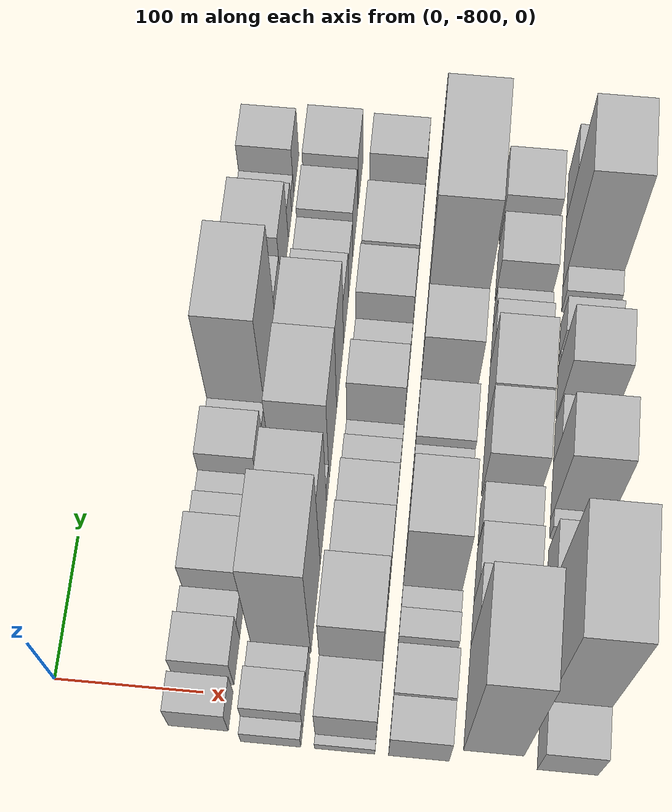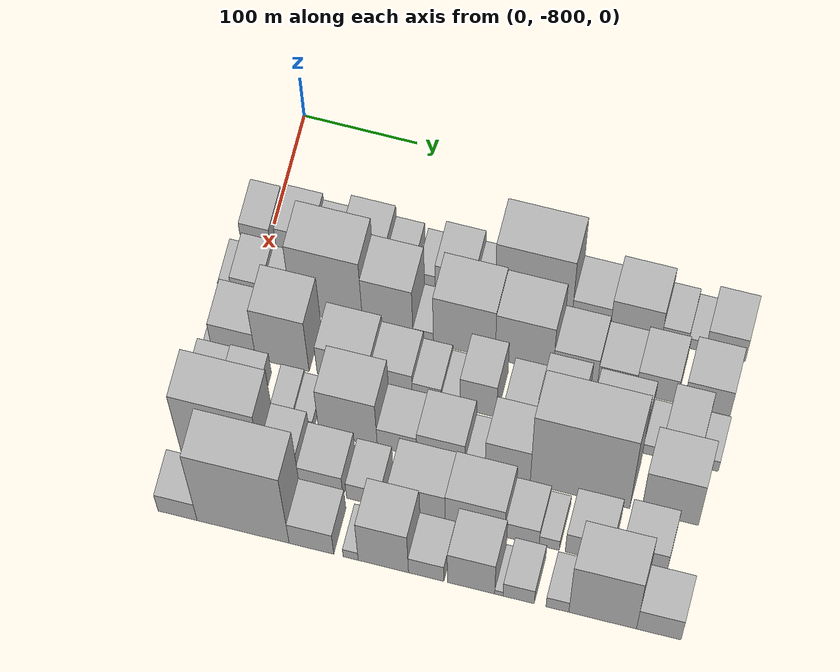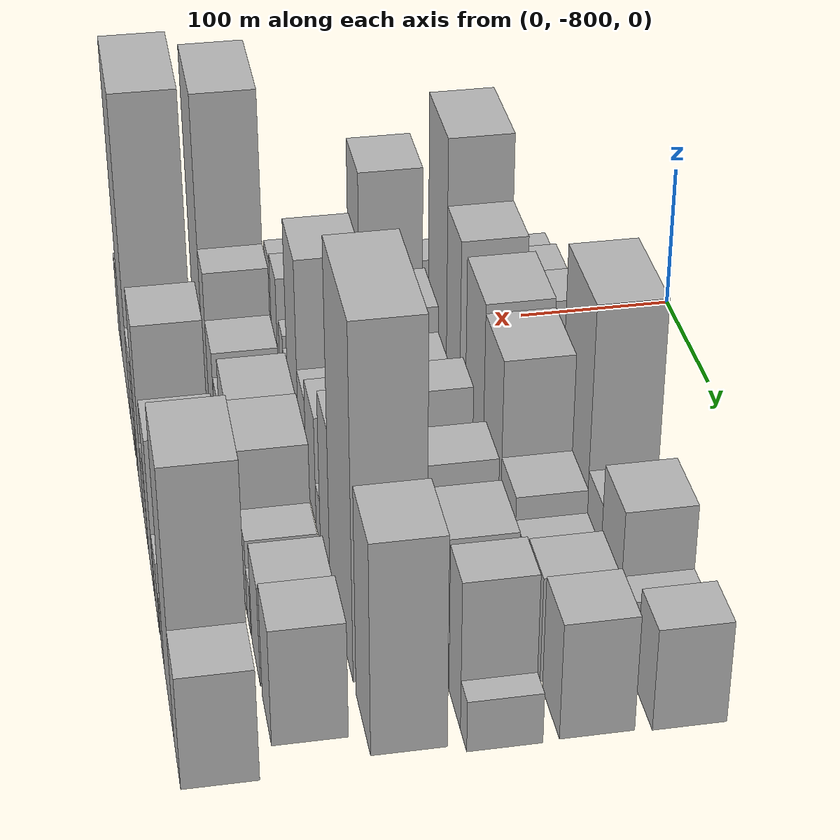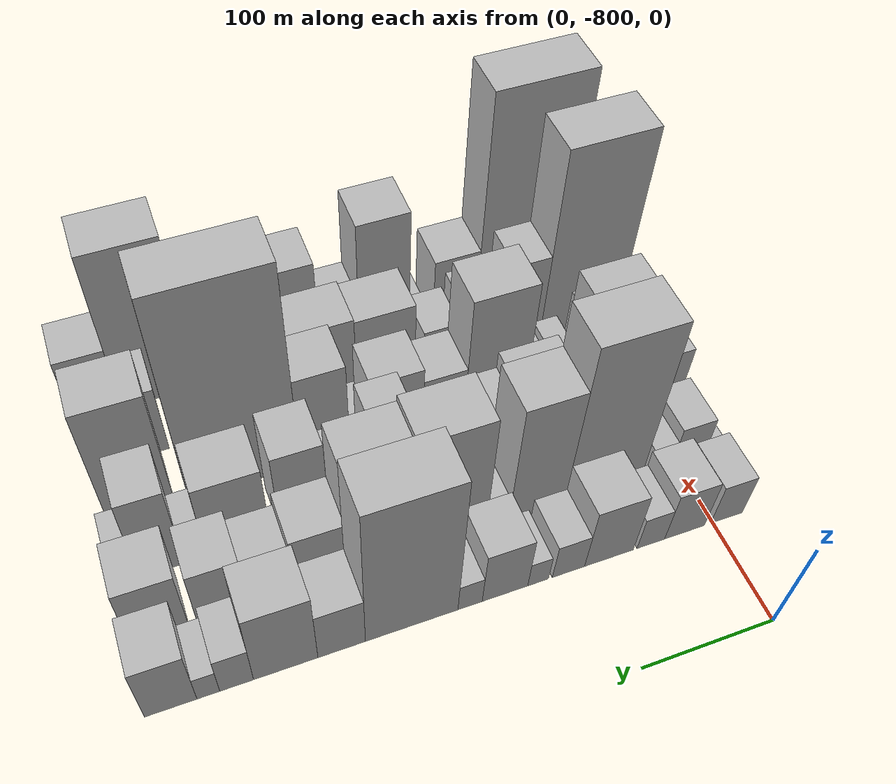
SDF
<sdf version="1.6">
 <world name="default">
  <model name="building_1">
   <static>1</static>
   <pose>100.0000 -810.9482 0 0.000000 0.000000 0.000000</pose>
   <link name="link">
    <pose>0 0 24.00 0 0 0</pose>
    <collision name="collision"><geometry><box><size>40.0000 26.1037 48.0000</size></box></geometry></collision>
    <visual name="visual">
     <cast_shadows>0</cast_shadows>
     <geometry><box><size>40.0000 26.1037 48.0000</size></box></geometry>
     <material>
      <script>
       <uri>model://HANNAS_wall/materials/scripts</uri>
       <uri>model://HANNAS_wall/materials/textures</uri>
       <name>vrc/HANNAS_wall</name>
      </script>
     </material>
    </visual>
   </link>
  </model>
  <model name="building_2">
   <static>1</static>
   <pose>100.0000 -776.8065 0 0.000000 0.000000 0.000000</pose>
   <link name="link">
    <pose>0 0 28.50 0 0 0</pose>
    <collision name="collision"><geometry><box><size>40.0000 32.1797 57.0000</size></box></geometry></collision>
    <visual name="visual">
     <cast_shadows>0</cast_shadows>
     <geometry><box><size>40.0000 32.1797 57.0000</size></box></geometry>
     <material>
      <script>
       <uri>model://HANNAS_wall/materials/scripts</uri>
       <uri>model://HANNAS_wall/materials/textures</uri>
       <name>vrc/HANNAS_wall</name>
      </script>
     </material>
    </visual>
   </link>
  </model>
  <model name="building_3">
   <static>1</static>
   <pose>100.0000 -749.7164 0 0.000000 0.000000 0.000000</pose>
   <link name="link">
    <pose>0 0 19.50 0 0 0</pose>
    <collision name="collision"><geometry><box><size>40.0000 22.0005 39.0000</size></box></geometry></collision>
    <visual name="visual">
     <cast_shadows>0</cast_shadows>
     <geometry><box><size>40.0000 22.0005 39.0000</size></box></geometry>
     <material>
      <script>
       <uri>model://HANNAS_wall/materials/scripts</uri>
       <uri>model://HANNAS_wall/materials/textures</uri>
       <name>vrc/HANNAS_wall</name>
      </script>
     </material>
    </visual>
   </link>
  </model>
  <model name="building_4">
   <static>1</static>
   <pose>100.0000 -716.6005 0 0.000000 0.000000 0.000000</pose>
   <link name="link">
    <pose>0 0 36.00 0 0 0</pose>
    <collision name="collision"><geometry><box><size>40.0000 38.2311 72.0000</size></box></geometry></collision>
    <visual name="visual">
     <cast_shadows>0</cast_shadows>
     <geometry><box><size>40.0000 38.2311 72.0000</size></box></geometry>
     <material>
      <script>
       <uri>model://HANNAS_wall/materials/scripts</uri>
       <uri>model://HANNAS_wall/materials/textures</uri>
       <name>vrc/HANNAS_wall</name>
      </script>
     </material>
    </visual>
   </link>
  </model>
  <model name="building_5">
   <static>1</static>
   <pose>100.0000 -685.0904 0 0.000000 0.000000 0.000000</pose>
   <link name="link">
    <pose>0 0 21.00 0 0 0</pose>
    <collision name="collision"><geometry><box><size>40.0000 24.7891 42.0000</size></box></geometry></collision>
    <visual name="visual">
     <cast_shadows>0</cast_shadows>
     <geometry><box><size>40.0000 24.7891 42.0000</size></box></geometry>
     <material>
      <script>
       <uri>model://HANNAS_wall/materials/scripts</uri>
       <uri>model://HANNAS_wall/materials/textures</uri>
       <name>vrc/HANNAS_wall</name>
      </script>
     </material>
    </visual>
   </link>
  </model>
  <model name="building_6">
   <static>1</static>
   <pose>100.0000 -661.8054 0 0.000000 0.000000 0.000000</pose>
   <link name="link">
    <pose>0 0 15.00 0 0 0</pose>
    <collision name="collision"><geometry><box><size>40.0000 15.7809 30.0000</size></box></geometry></collision>
    <visual name="visual">
     <cast_shadows>0</cast_shadows>
     <geometry><box><size>40.0000 15.7809 30.0000</size></box></geometry>
     <material>
      <script>
       <uri>model://HANNAS_wall/materials/scripts</uri>
       <uri>model://HANNAS_wall/materials/textures</uri>
       <name>vrc/HANNAS_wall</name>
      </script>
     </material>
    </visual>
   </link>
  </model>
  <model name="building_7">
   <static>1</static>
   <pose>100.0000 -636.8099 0 0.000000 0.000000 0.000000</pose>
   <link name="link">
    <pose>0 0 31.50 0 0 0</pose>
    <collision name="collision"><geometry><box><size>40.0000 34.2101 63.0000</size></box></geometry></collision>
    <visual name="visual">
     <cast_shadows>0</cast_shadows>
     <geometry><box><size>40.0000 34.2101 63.0000</size></box></geometry>
     <material>
      <script>
       <uri>model://HANNAS_wall/materials/scripts</uri>
       <uri>model://HANNAS_wall/materials/textures</uri>
       <name>vrc/HANNAS_wall</name>
      </script>
     </material>
    </visual>
   </link>
  </model>
  <model name="building_8">
   <static>1</static>
   <pose>100.0000 -610.7147 0 0.000000 0.000000 0.000000</pose>
   <link name="link">
    <pose>0 0 16.50 0 0 0</pose>
    <collision name="collision"><geometry><box><size>40.0000 17.9803 33.0000</size></box></geometry></collision>
    <visual name="visual">
     <cast_shadows>0</cast_shadows>
     <geometry><box><size>40.0000 17.9803 33.0000</size></box></geometry>
     <material>
      <script>
       <uri>model://HANNAS_wall/materials/scripts</uri>
       <uri>model://HANNAS_wall/materials/textures</uri>
       <name>vrc/HANNAS_wall</name>
      </script>
     </material>
    </visual>
   </link>
  </model>
  <model name="building_9">
   <static>1</static>
   <pose>100.0000 -568.2973 0 0.000000 0.000000 0.000000</pose>
   <link name="link">
    <pose>0 0 84.00 0 0 0</pose>
    <collision name="collision"><geometry><box><size>40.0000 66.8545 168.0000</size></box></geometry></collision>
    <visual name="visual">
     <cast_shadows>0</cast_shadows>
     <geometry><box><size>40.0000 66.8545 168.0000</size></box></geometry>
     <material>
      <script>
       <uri>model://HANNAS_wall/materials/scripts</uri>
       <uri>model://HANNAS_wall/materials/textures</uri>
       <name>vrc/HANNAS_wall</name>
      </script>
     </material>
    </visual>
   </link>
  </model>
  <model name="building_10">
   <static>1</static>
   <pose>100.0000 -518.1733 0 0.000000 0.000000 0.000000</pose>
   <link name="link">
    <pose>0 0 30.00 0 0 0</pose>
    <collision name="collision"><geometry><box><size>40.0000 33.3936 60.0000</size></box></geometry></collision>
    <visual name="visual">
     <cast_shadows>0</cast_shadows>
     <geometry><box><size>40.0000 33.3936 60.0000</size></box></geometry>
     <material>
      <script>
       <uri>model://HANNAS_wall/materials/scripts</uri>
       <uri>model://HANNAS_wall/materials/textures</uri>
       <name>vrc/HANNAS_wall</name>
      </script>
     </material>
    </visual>
   </link>
  </model>
  <model name="building_11">
   <static>1</static>
   <pose>100.0000 -479.3493 0 0.000000 0.000000 0.000000</pose>
   <link name="link">
    <pose>0 0 43.50 0 0 0</pose>
    <collision name="collision"><geometry><box><size>40.0000 44.2543 87.0000</size></box></geometry></collision>
    <visual name="visual">
     <cast_shadows>0</cast_shadows>
     <geometry><box><size>40.0000 44.2543 87.0000</size></box></geometry>
     <material>
      <script>
       <uri>model://HANNAS_wall/materials/scripts</uri>
       <uri>model://HANNAS_wall/materials/textures</uri>
       <name>vrc/HANNAS_wall</name>
      </script>
     </material>
    </visual>
   </link>
  </model>
  <model name="building_12">
   <static>1</static>
   <pose>100.0000 -445.8063 0 0.000000 0.000000 0.000000</pose>
   <link name="link">
    <pose>0 0 22.50 0 0 0</pose>
    <collision name="collision"><geometry><box><size>40.0000 22.8317 45.0000</size></box></geometry></collision>
    <visual name="visual">
     <cast_shadows>0</cast_shadows>
     <geometry><box><size>40.0000 22.8317 45.0000</size></box></geometry>
     <material>
      <script>
       <uri>model://HANNAS_wall/materials/scripts</uri>
       <uri>model://HANNAS_wall/materials/textures</uri>
       <name>vrc/HANNAS_wall</name>
      </script>
     </material>
    </visual>
   </link>
  </model>
  <model name="building_13">
   <static>1</static>
   <pose>100.0000 -426.7800 0 0.000000 0.000000 0.000000</pose>
   <link name="link">
    <pose>0 0 15.00 0 0 0</pose>
    <collision name="collision"><geometry><box><size>40.0000 15.2208 30.0000</size></box></geometry></collision>
    <visual name="visual">
     <cast_shadows>0</cast_shadows>
     <geometry><box><size>40.0000 15.2208 30.0000</size></box></geometry>
     <material>
      <script>
       <uri>model://HANNAS_wall/materials/scripts</uri>
       <uri>model://HANNAS_wall/materials/textures</uri>
       <name>vrc/HANNAS_wall</name>
      </script>
     </material>
    </visual>
   </link>
  </model>
  <model name="building_14">
   <static>1</static>
   <pose>100.0000 -401.9076 0 0.000000 0.000000 0.000000</pose>
   <link name="link">
    <pose>0 0 33.00 0 0 0</pose>
    <collision name="collision"><geometry><box><size>40.0000 34.5240 66.0000</size></box></geometry></collision>
    <visual name="visual">
     <cast_shadows>0</cast_shadows>
     <geometry><box><size>40.0000 34.5240 66.0000</size></box></geometry>
     <material>
      <script>
       <uri>model://HANNAS_wall/materials/scripts</uri>
       <uri>model://HANNAS_wall/materials/textures</uri>
       <name>vrc/HANNAS_wall</name>
      </script>
     </material>
    </visual>
   </link>
  </model>
  <model name="building_50">
   <static>1</static>
   <pose>149.0000 -824.2631 0 0.000000 0.000000 0.000000</pose>
   <link name="link">
    <pose>0 0 13.50 0 0 0</pose>
    <collision name="collision"><geometry><box><size>40.0000 11.4738 27.0000</size></box></geometry></collision>
    <visual name="visual">
     <cast_shadows>0</cast_shadows>
     <geometry><box><size>40.0000 11.4738 27.0000</size></box></geometry>
     <material>
      <script>
       <uri>model://HANNAS_wall/materials/scripts</uri>
       <uri>model://HANNAS_wall/materials/textures</uri>
       <name>vrc/HANNAS_wall</name>
      </script>
     </material>
    </visual>
   </link>
  </model>
  <model name="building_51">
   <static>1</static>
   <pose>149.0000 -804.8799 0 0.000000 0.000000 0.000000</pose>
   <link name="link">
    <pose>0 0 27.00 0 0 0</pose>
    <collision name="collision"><geometry><box><size>40.0000 27.2926 54.0000</size></box></geometry></collision>
    <visual name="visual">
     <cast_shadows>0</cast_shadows>
     <geometry><box><size>40.0000 27.2926 54.0000</size></box></geometry>
     <material>
      <script>
       <uri>model://HANNAS_wall/materials/scripts</uri>
       <uri>model://HANNAS_wall/materials/textures</uri>
       <name>vrc/HANNAS_wall</name>
      </script>
     </material>
    </visual>
   </link>
  </model>
  <model name="building_52">
   <static>1</static>
   <pose>149.0000 -781.4099 0 0.000000 0.000000 0.000000</pose>
   <link name="link">
    <pose>0 0 19.50 0 0 0</pose>
    <collision name="collision"><geometry><box><size>40.0000 19.6474 39.0000</size></box></geometry></collision>
    <visual name="visual">
     <cast_shadows>0</cast_shadows>
     <geometry><box><size>40.0000 19.6474 39.0000</size></box></geometry>
     <material>
      <script>
       <uri>model://HANNAS_wall/materials/scripts</uri>
       <uri>model://HANNAS_wall/materials/textures</uri>
       <name>vrc/HANNAS_wall</name>
      </script>
     </material>
    </visual>
   </link>
  </model>
  <model name="building_53">
   <static>1</static>
   <pose>149.0000 -735.4409 0 0.000000 0.000000 0.000000</pose>
   <link name="link">
    <pose>0 0 93.00 0 0 0</pose>
    <collision name="collision"><geometry><box><size>40.0000 62.2906 186.0000</size></box></geometry></collision>
    <visual name="visual">
     <cast_shadows>0</cast_shadows>
     <geometry><box><size>40.0000 62.2906 186.0000</size></box></geometry>
     <material>
      <script>
       <uri>model://HANNAS_wall/materials/scripts</uri>
       <uri>model://HANNAS_wall/materials/textures</uri>
       <name>vrc/HANNAS_wall</name>
      </script>
     </material>
    </visual>
   </link>
  </model>
  <model name="building_54">
   <static>1</static>
   <pose>149.0000 -682.4288 0 0.000000 0.000000 0.000000</pose>
   <link name="link">
    <pose>0 0 70.50 0 0 0</pose>
    <collision name="collision"><geometry><box><size>40.0000 43.7336 141.0000</size></box></geometry></collision>
    <visual name="visual">
     <cast_shadows>0</cast_shadows>
     <geometry><box><size>40.0000 43.7336 141.0000</size></box></geometry>
     <material>
      <script>
       <uri>model://HANNAS_wall/materials/scripts</uri>
       <uri>model://HANNAS_wall/materials/textures</uri>
       <name>vrc/HANNAS_wall</name>
      </script>
     </material>
    </visual>
   </link>
  </model>
  <model name="building_55">
   <static>1</static>
   <pose>149.0000 -651.7244 0 0.000000 0.000000 0.000000</pose>
   <link name="link">
    <pose>0 0 16.50 0 0 0</pose>
    <collision name="collision"><geometry><box><size>40.0000 17.6752 33.0000</size></box></geometry></collision>
    <visual name="visual">
     <cast_shadows>0</cast_shadows>
     <geometry><box><size>40.0000 17.6752 33.0000</size></box></geometry>
     <material>
      <script>
       <uri>model://HANNAS_wall/materials/scripts</uri>
       <uri>model://HANNAS_wall/materials/textures</uri>
       <name>vrc/HANNAS_wall</name>
      </script>
     </material>
    </visual>
   </link>
  </model>
  <model name="building_56">
   <static>1</static>
   <pose>149.0000 -616.1032 0 0.000000 0.000000 0.000000</pose>
   <link name="link">
    <pose>0 0 70.50 0 0 0</pose>
    <collision name="collision"><geometry><box><size>40.0000 53.5673 141.0000</size></box></geometry></collision>
    <visual name="visual">
     <cast_shadows>0</cast_shadows>
     <geometry><box><size>40.0000 53.5673 141.0000</size></box></geometry>
     <material>
      <script>
       <uri>model://HANNAS_wall/materials/scripts</uri>
       <uri>model://HANNAS_wall/materials/textures</uri>
       <name>vrc/HANNAS_wall</name>
      </script>
     </material>
    </visual>
   </link>
  </model>
  <model name="building_57">
   <static>1</static>
   <pose>149.0000 -564.2464 0 0.000000 0.000000 0.000000</pose>
   <link name="link">
    <pose>0 0 67.50 0 0 0</pose>
    <collision name="collision"><geometry><box><size>40.0000 50.1462 135.0000</size></box></geometry></collision>
    <visual name="visual">
     <cast_shadows>0</cast_shadows>
     <geometry><box><size>40.0000 50.1462 135.0000</size></box></geometry>
     <material>
      <script>
       <uri>model://HANNAS_wall/materials/scripts</uri>
       <uri>model://HANNAS_wall/materials/textures</uri>
       <name>vrc/HANNAS_wall</name>
      </script>
     </material>
    </visual>
   </link>
  </model>
  <model name="building_58">
   <static>1</static>
   <pose>149.0000 -519.9100 0 0.000000 0.000000 0.000000</pose>
   <link name="link">
    <pose>0 0 36.00 0 0 0</pose>
    <collision name="collision"><geometry><box><size>40.0000 38.5267 72.0000</size></box></geometry></collision>
    <visual name="visual">
     <cast_shadows>0</cast_shadows>
     <geometry><box><size>40.0000 38.5267 72.0000</size></box></geometry>
     <material>
      <script>
       <uri>model://HANNAS_wall/materials/scripts</uri>
       <uri>model://HANNAS_wall/materials/textures</uri>
       <name>vrc/HANNAS_wall</name>
      </script>
     </material>
    </visual>
   </link>
  </model>
  <model name="building_59">
   <static>1</static>
   <pose>149.0000 -484.0989 0 0.000000 0.000000 0.000000</pose>
   <link name="link">
    <pose>0 0 28.50 0 0 0</pose>
    <collision name="collision"><geometry><box><size>40.0000 33.0955 57.0000</size></box></geometry></collision>
    <visual name="visual">
     <cast_shadows>0</cast_shadows>
     <geometry><box><size>40.0000 33.0955 57.0000</size></box></geometry>
     <material>
      <script>
       <uri>model://HANNAS_wall/materials/scripts</uri>
       <uri>model://HANNAS_wall/materials/textures</uri>
       <name>vrc/HANNAS_wall</name>
      </script>
     </material>
    </visual>
   </link>
  </model>
  <model name="building_60">
   <static>1</static>
   <pose>149.0000 -449.9283 0 0.000000 0.000000 0.000000</pose>
   <link name="link">
    <pose>0 0 34.50 0 0 0</pose>
    <collision name="collision"><geometry><box><size>40.0000 35.2457 69.0000</size></box></geometry></collision>
    <visual name="visual">
     <cast_shadows>0</cast_shadows>
     <geometry><box><size>40.0000 35.2457 69.0000</size></box></geometry>
     <material>
      <script>
       <uri>model://HANNAS_wall/materials/scripts</uri>
       <uri>model://HANNAS_wall/materials/textures</uri>
       <name>vrc/HANNAS_wall</name>
      </script>
     </material>
    </visual>
   </link>
  </model>
  <model name="building_61">
   <static>1</static>
   <pose>149.0000 -406.2731 0 0.000000 0.000000 0.000000</pose>
   <link name="link">
    <pose>0 0 37.50 0 0 0</pose>
    <collision name="collision"><geometry><box><size>40.0000 40.0647 75.0000</size></box></geometry></collision>
    <visual name="visual">
     <cast_shadows>0</cast_shadows>
     <geometry><box><size>40.0000 40.0647 75.0000</size></box></geometry>
     <material>
      <script>
       <uri>model://HANNAS_wall/materials/scripts</uri>
       <uri>model://HANNAS_wall/materials/textures</uri>
       <name>vrc/HANNAS_wall</name>
      </script>
     </material>
    </visual>
   </link>
  </model>
  <model name="building_99">
   <static>1</static>
   <pose>198.0000 -826.6415 0 0.000000 0.000000 0.000000</pose>
   <link name="link">
    <pose>0 0 7.50 0 0 0</pose>
    <collision name="collision"><geometry><box><size>40.0000 6.7171 15.0000</size></box></geometry></collision>
    <visual name="visual">
     <cast_shadows>0</cast_shadows>
     <geometry><box><size>40.0000 6.7171 15.0000</size></box></geometry>
     <material>
      <script>
       <uri>model://HANNAS_wall/materials/scripts</uri>
       <uri>model://HANNAS_wall/materials/textures</uri>
       <name>vrc/HANNAS_wall</name>
      </script>
     </material>
    </visual>
   </link>
  </model>
  <model name="building_100">
   <static>1</static>
   <pose>198.0000 -804.0157 0 0.000000 0.000000 0.000000</pose>
   <link name="link">
    <pose>0 0 37.50 0 0 0</pose>
    <collision name="collision"><geometry><box><size>40.0000 38.5344 75.0000</size></box></geometry></collision>
    <visual name="visual">
     <cast_shadows>0</cast_shadows>
     <geometry><box><size>40.0000 38.5344 75.0000</size></box></geometry>
     <material>
      <script>
       <uri>model://HANNAS_wall/materials/scripts</uri>
       <uri>model://HANNAS_wall/materials/textures</uri>
       <name>vrc/HANNAS_wall</name>
      </script>
     </material>
    </visual>
   </link>
  </model>
  <model name="building_101">
   <static>1</static>
   <pose>198.0000 -761.5369 0 0.000000 0.000000 0.000000</pose>
   <link name="link">
    <pose>0 0 75.00 0 0 0</pose>
    <collision name="collision"><geometry><box><size>40.0000 46.4234 150.0000</size></box></geometry></collision>
    <visual name="visual">
     <cast_shadows>0</cast_shadows>
     <geometry><box><size>40.0000 46.4234 150.0000</size></box></geometry>
     <material>
      <script>
       <uri>model://HANNAS_wall/materials/scripts</uri>
       <uri>model://HANNAS_wall/materials/textures</uri>
       <name>vrc/HANNAS_wall</name>
      </script>
     </material>
    </visual>
   </link>
  </model>
  <model name="building_102">
   <static>1</static>
   <pose>198.0000 -707.9141 0 0.000000 0.000000 0.000000</pose>
   <link name="link">
    <pose>0 0 42.00 0 0 0</pose>
    <collision name="collision"><geometry><box><size>40.0000 46.8222 84.0000</size></box></geometry></collision>
    <visual name="visual">
     <cast_shadows>0</cast_shadows>
     <geometry><box><size>40.0000 46.8222 84.0000</size></box></geometry>
     <material>
      <script>
       <uri>model://HANNAS_wall/materials/scripts</uri>
       <uri>model://HANNAS_wall/materials/textures</uri>
       <name>vrc/HANNAS_wall</name>
      </script>
     </material>
    </visual>
   </link>
  </model>
  <model name="building_103">
   <static>1</static>
   <pose>198.0000 -666.6542 0 0.000000 0.000000 0.000000</pose>
   <link name="link">
    <pose>0 0 33.00 0 0 0</pose>
    <collision name="collision"><geometry><box><size>40.0000 35.6976 66.0000</size></box></geometry></collision>
    <visual name="visual">
     <cast_shadows>0</cast_shadows>
     <geometry><box><size>40.0000 35.6976 66.0000</size></box></geometry>
     <material>
      <script>
       <uri>model://HANNAS_wall/materials/scripts</uri>
       <uri>model://HANNAS_wall/materials/textures</uri>
       <name>vrc/HANNAS_wall</name>
      </script>
     </material>
    </visual>
   </link>
  </model>
  <model name="building_104">
   <static>1</static>
   <pose>198.0000 -636.2780 0 0.000000 0.000000 0.000000</pose>
   <link name="link">
    <pose>0 0 22.50 0 0 0</pose>
    <collision name="collision"><geometry><box><size>40.0000 25.0548 45.0000</size></box></geometry></collision>
    <visual name="visual">
     <cast_shadows>0</cast_shadows>
     <geometry><box><size>40.0000 25.0548 45.0000</size></box></geometry>
     <material>
      <script>
       <uri>model://HANNAS_wall/materials/scripts</uri>
       <uri>model://HANNAS_wall/materials/textures</uri>
       <name>vrc/HANNAS_wall</name>
      </script>
     </material>
    </visual>
   </link>
  </model>
  <model name="building_105">
   <static>1</static>
   <pose>198.0000 -615.6169 0 0.000000 0.000000 0.000000</pose>
   <link name="link">
    <pose>0 0 15.00 0 0 0</pose>
    <collision name="collision"><geometry><box><size>40.0000 16.2675 30.0000</size></box></geometry></collision>
    <visual name="visual">
     <cast_shadows>0</cast_shadows>
     <geometry><box><size>40.0000 16.2675 30.0000</size></box></geometry>
     <material>
      <script>
       <uri>model://HANNAS_wall/materials/scripts</uri>
       <uri>model://HANNAS_wall/materials/textures</uri>
       <name>vrc/HANNAS_wall</name>
      </script>
     </material>
    </visual>
   </link>
  </model>
  <model name="building_106">
   <static>1</static>
   <pose>198.0000 -591.6885 0 0.000000 0.000000 0.000000</pose>
   <link name="link">
    <pose>0 0 48.00 0 0 0</pose>
    <collision name="collision"><geometry><box><size>40.0000 31.5894 96.0000</size></box></geometry></collision>
    <visual name="visual">
     <cast_shadows>0</cast_shadows>
     <geometry><box><size>40.0000 31.5894 96.0000</size></box></geometry>
     <material>
      <script>
       <uri>model://HANNAS_wall/materials/scripts</uri>
       <uri>model://HANNAS_wall/materials/textures</uri>
       <name>vrc/HANNAS_wall</name>
      </script>
     </material>
    </visual>
   </link>
  </model>
  <model name="building_107">
   <static>1</static>
   <pose>198.0000 -555.5205 0 0.000000 0.000000 0.000000</pose>
   <link name="link">
    <pose>0 0 27.00 0 0 0</pose>
    <collision name="collision"><geometry><box><size>40.0000 28.7466 54.0000</size></box></geometry></collision>
    <visual name="visual">
     <cast_shadows>0</cast_shadows>
     <geometry><box><size>40.0000 28.7466 54.0000</size></box></geometry>
     <material>
      <script>
       <uri>model://HANNAS_wall/materials/scripts</uri>
       <uri>model://HANNAS_wall/materials/textures</uri>
       <name>vrc/HANNAS_wall</name>
      </script>
     </material>
    </visual>
   </link>
  </model>
  <model name="building_108">
   <static>1</static>
   <pose>198.0000 -522.8984 0 0.000000 0.000000 0.000000</pose>
   <link name="link">
    <pose>0 0 48.00 0 0 0</pose>
    <collision name="collision"><geometry><box><size>40.0000 36.4977 96.0000</size></box></geometry></collision>
    <visual name="visual">
     <cast_shadows>0</cast_shadows>
     <geometry><box><size>40.0000 36.4977 96.0000</size></box></geometry>
     <material>
      <script>
       <uri>model://HANNAS_wall/materials/scripts</uri>
       <uri>model://HANNAS_wall/materials/textures</uri>
       <name>vrc/HANNAS_wall</name>
      </script>
     </material>
    </visual>
   </link>
  </model>
  <model name="building_109">
   <static>1</static>
   <pose>198.0000 -473.8888 0 0.000000 0.000000 0.000000</pose>
   <link name="link">
    <pose>0 0 43.50 0 0 0</pose>
    <collision name="collision"><geometry><box><size>40.0000 47.5214 87.0000</size></box></geometry></collision>
    <visual name="visual">
     <cast_shadows>0</cast_shadows>
     <geometry><box><size>40.0000 47.5214 87.0000</size></box></geometry>
     <material>
      <script>
       <uri>model://HANNAS_wall/materials/scripts</uri>
       <uri>model://HANNAS_wall/materials/textures</uri>
       <name>vrc/HANNAS_wall</name>
      </script>
     </material>
    </visual>
   </link>
  </model>
  <model name="building_110">
   <static>1</static>
   <pose>198.0000 -442.1622 0 0.000000 0.000000 0.000000</pose>
   <link name="link">
    <pose>0 0 15.00 0 0 0</pose>
    <collision name="collision"><geometry><box><size>40.0000 15.9318 30.0000</size></box></geometry></collision>
    <visual name="visual">
     <cast_shadows>0</cast_shadows>
     <geometry><box><size>40.0000 15.9318 30.0000</size></box></geometry>
     <material>
      <script>
       <uri>model://HANNAS_wall/materials/scripts</uri>
       <uri>model://HANNAS_wall/materials/textures</uri>
       <name>vrc/HANNAS_wall</name>
      </script>
     </material>
    </visual>
   </link>
  </model>
  <model name="building_111">
   <static>1</static>
   <pose>198.0000 -418.0455 0 0.000000 0.000000 0.000000</pose>
   <link name="link">
    <pose>0 0 48.00 0 0 0</pose>
    <collision name="collision"><geometry><box><size>40.0000 32.3018 96.0000</size></box></geometry></collision>
    <visual name="visual">
     <cast_shadows>0</cast_shadows>
     <geometry><box><size>40.0000 32.3018 96.0000</size></box></geometry>
     <material>
      <script>
       <uri>model://HANNAS_wall/materials/scripts</uri>
       <uri>model://HANNAS_wall/materials/textures</uri>
       <name>vrc/HANNAS_wall</name>
      </script>
     </material>
    </visual>
   </link>
  </model>
  <model name="building_112">
   <static>1</static>
   <pose>198.0000 -393.4062 0 0.000000 0.000000 0.000000</pose>
   <link name="link">
    <pose>0 0 16.50 0 0 0</pose>
    <collision name="collision"><geometry><box><size>40.0000 16.9767 33.0000</size></box></geometry></collision>
    <visual name="visual">
     <cast_shadows>0</cast_shadows>
     <geometry><box><size>40.0000 16.9767 33.0000</size></box></geometry>
     <material>
      <script>
       <uri>model://HANNAS_wall/materials/scripts</uri>
       <uri>model://HANNAS_wall/materials/textures</uri>
       <name>vrc/HANNAS_wall</name>
      </script>
     </material>
    </visual>
   </link>
  </model>
  <model name="building_149">
   <static>1</static>
   <pose>247.0000 -815.6625 0 0.000000 0.000000 0.000000</pose>
   <link name="link">
    <pose>0 0 28.50 0 0 0</pose>
    <collision name="collision"><geometry><box><size>40.0000 28.6751 57.0000</size></box></geometry></collision>
    <visual name="visual">
     <cast_shadows>0</cast_shadows>
     <geometry><box><size>40.0000 28.6751 57.0000</size></box></geometry>
     <material>
      <script>
       <uri>model://HANNAS_wall/materials/scripts</uri>
       <uri>model://HANNAS_wall/materials/textures</uri>
       <name>vrc/HANNAS_wall</name>
      </script>
     </material>
    </visual>
   </link>
  </model>
  <model name="building_150">
   <static>1</static>
   <pose>247.0000 -785.0686 0 0.000000 0.000000 0.000000</pose>
   <link name="link">
    <pose>0 0 31.50 0 0 0</pose>
    <collision name="collision"><geometry><box><size>40.0000 32.5125 63.0000</size></box></geometry></collision>
    <visual name="visual">
     <cast_shadows>0</cast_shadows>
     <geometry><box><size>40.0000 32.5125 63.0000</size></box></geometry>
     <material>
      <script>
       <uri>model://HANNAS_wall/materials/scripts</uri>
       <uri>model://HANNAS_wall/materials/textures</uri>
       <name>vrc/HANNAS_wall</name>
      </script>
     </material>
    </visual>
   </link>
  </model>
  <model name="building_151">
   <static>1</static>
   <pose>247.0000 -748.8982 0 0.000000 0.000000 0.000000</pose>
   <link name="link">
    <pose>0 0 19.50 0 0 0</pose>
    <collision name="collision"><geometry><box><size>40.0000 19.8284 39.0000</size></box></geometry></collision>
    <visual name="visual">
     <cast_shadows>0</cast_shadows>
     <geometry><box><size>40.0000 19.8284 39.0000</size></box></geometry>
     <material>
      <script>
       <uri>model://HANNAS_wall/materials/scripts</uri>
       <uri>model://HANNAS_wall/materials/textures</uri>
       <name>vrc/HANNAS_wall</name>
      </script>
     </material>
    </visual>
   </link>
  </model>
  <model name="building_152">
   <static>1</static>
   <pose>247.0000 -730.4823 0 0.000000 0.000000 0.000000</pose>
   <link name="link">
    <pose>0 0 15.00 0 0 0</pose>
    <collision name="collision"><geometry><box><size>40.0000 17.0034 30.0000</size></box></geometry></collision>
    <visual name="visual">
     <cast_shadows>0</cast_shadows>
     <geometry><box><size>40.0000 17.0034 30.0000</size></box></geometry>
     <material>
      <script>
       <uri>model://HANNAS_wall/materials/scripts</uri>
       <uri>model://HANNAS_wall/materials/textures</uri>
       <name>vrc/HANNAS_wall</name>
      </script>
     </material>
    </visual>
   </link>
  </model>
  <model name="building_153">
   <static>1</static>
   <pose>247.0000 -691.7248 0 0.000000 0.000000 0.000000</pose>
   <link name="link">
    <pose>0 0 67.50 0 0 0</pose>
    <collision name="collision"><geometry><box><size>40.0000 50.5116 135.0000</size></box></geometry></collision>
    <visual name="visual">
     <cast_shadows>0</cast_shadows>
     <geometry><box><size>40.0000 50.5116 135.0000</size></box></geometry>
     <material>
      <script>
       <uri>model://HANNAS_wall/materials/scripts</uri>
       <uri>model://HANNAS_wall/materials/textures</uri>
       <name>vrc/HANNAS_wall</name>
      </script>
     </material>
    </visual>
   </link>
  </model>
  <model name="building_154">
   <static>1</static>
   <pose>247.0000 -649.3321 0 0.000000 0.000000 0.000000</pose>
   <link name="link">
    <pose>0 0 30.00 0 0 0</pose>
    <collision name="collision"><geometry><box><size>40.0000 34.2738 60.0000</size></box></geometry></collision>
    <visual name="visual">
     <cast_shadows>0</cast_shadows>
     <geometry><box><size>40.0000 34.2738 60.0000</size></box></geometry>
     <material>
      <script>
       <uri>model://HANNAS_wall/materials/scripts</uri>
       <uri>model://HANNAS_wall/materials/textures</uri>
       <name>vrc/HANNAS_wall</name>
      </script>
     </material>
    </visual>
   </link>
  </model>
  <model name="building_155">
   <static>1</static>
   <pose>247.0000 -611.6015 0 0.000000 0.000000 0.000000</pose>
   <link name="link">
    <pose>0 0 37.50 0 0 0</pose>
    <collision name="collision"><geometry><box><size>40.0000 41.1873 75.0000</size></box></geometry></collision>
    <visual name="visual">
     <cast_shadows>0</cast_shadows>
     <geometry><box><size>40.0000 41.1873 75.0000</size></box></geometry>
     <material>
      <script>
       <uri>model://HANNAS_wall/materials/scripts</uri>
       <uri>model://HANNAS_wall/materials/textures</uri>
       <name>vrc/HANNAS_wall</name>
      </script>
     </material>
    </visual>
   </link>
  </model>
  <model name="building_156">
   <static>1</static>
   <pose>247.0000 -582.3333 0 0.000000 0.000000 0.000000</pose>
   <link name="link">
    <pose>0 0 15.00 0 0 0</pose>
    <collision name="collision"><geometry><box><size>40.0000 17.3491 30.0000</size></box></geometry></collision>
    <visual name="visual">
     <cast_shadows>0</cast_shadows>
     <geometry><box><size>40.0000 17.3491 30.0000</size></box></geometry>
     <material>
      <script>
       <uri>model://HANNAS_wall/materials/scripts</uri>
       <uri>model://HANNAS_wall/materials/textures</uri>
       <name>vrc/HANNAS_wall</name>
      </script>
     </material>
    </visual>
   </link>
  </model>
  <model name="building_157">
   <static>1</static>
   <pose>247.0000 -554.2540 0 0.000000 0.000000 0.000000</pose>
   <link name="link">
    <pose>0 0 52.50 0 0 0</pose>
    <collision name="collision"><geometry><box><size>40.0000 38.8095 105.0000</size></box></geometry></collision>
    <visual name="visual">
     <cast_shadows>0</cast_shadows>
     <geometry><box><size>40.0000 38.8095 105.0000</size></box></geometry>
     <material>
      <script>
       <uri>model://HANNAS_wall/materials/scripts</uri>
       <uri>model://HANNAS_wall/materials/textures</uri>
       <name>vrc/HANNAS_wall</name>
      </script>
     </material>
    </visual>
   </link>
  </model>
  <model name="building_158">
   <static>1</static>
   <pose>247.0000 -492.0836 0 0.000000 0.000000 0.000000</pose>
   <link name="link">
    <pose>0 0 112.50 0 0 0</pose>
    <collision name="collision"><geometry><box><size>40.0000 85.5313 225.0000</size></box></geometry></collision>
    <visual name="visual">
     <cast_shadows>0</cast_shadows>
     <geometry><box><size>40.0000 85.5313 225.0000</size></box></geometry>
     <material>
      <script>
       <uri>model://HANNAS_wall/materials/scripts</uri>
       <uri>model://HANNAS_wall/materials/textures</uri>
       <name>vrc/HANNAS_wall</name>
      </script>
     </material>
    </visual>
   </link>
  </model>
  <model name="building_159">
   <static>1</static>
   <pose>247.0000 -414.8836 0 0.000000 0.000000 0.000000</pose>
   <link name="link">
    <pose>0 0 67.50 0 0 0</pose>
    <collision name="collision"><geometry><box><size>40.0000 48.8687 135.0000</size></box></geometry></collision>
    <visual name="visual">
     <cast_shadows>0</cast_shadows>
     <geometry><box><size>40.0000 48.8687 135.0000</size></box></geometry>
     <material>
      <script>
       <uri>model://HANNAS_wall/materials/scripts</uri>
       <uri>model://HANNAS_wall/materials/textures</uri>
       <name>vrc/HANNAS_wall</name>
      </script>
     </material>
    </visual>
   </link>
  </model>
  <model name="building_196">
   <static>1</static>
   <pose>296.0000 -787.0349 0 0.000000 0.000000 0.000000</pose>
   <link name="link">
    <pose>0 0 102.00 0 0 0</pose>
    <collision name="collision"><geometry><box><size>40.0000 69.9302 204.0000</size></box></geometry></collision>
    <visual name="visual">
     <cast_shadows>0</cast_shadows>
     <geometry><box><size>40.0000 69.9302 204.0000</size></box></geometry>
     <material>
      <script>
       <uri>model://HANNAS_wall/materials/scripts</uri>
       <uri>model://HANNAS_wall/materials/textures</uri>
       <name>vrc/HANNAS_wall</name>
      </script>
     </material>
    </visual>
   </link>
  </model>
  <model name="building_197">
   <static>1</static>
   <pose>296.0000 -736.9802 0 0.000000 0.000000 0.000000</pose>
   <link name="link">
    <pose>0 0 49.50 0 0 0</pose>
    <collision name="collision"><geometry><box><size>40.0000 30.1791 99.0000</size></box></geometry></collision>
    <visual name="visual">
     <cast_shadows>0</cast_shadows>
     <geometry><box><size>40.0000 30.1791 99.0000</size></box></geometry>
     <material>
      <script>
       <uri>model://HANNAS_wall/materials/scripts</uri>
       <uri>model://HANNAS_wall/materials/textures</uri>
       <name>vrc/HANNAS_wall</name>
      </script>
     </material>
    </visual>
   </link>
  </model>
  <model name="building_198">
   <static>1</static>
   <pose>296.0000 -702.6708 0 0.000000 0.000000 0.000000</pose>
   <link name="link">
    <pose>0 0 33.00 0 0 0</pose>
    <collision name="collision"><geometry><box><size>40.0000 38.4399 66.0000</size></box></geometry></collision>
    <visual name="visual">
     <cast_shadows>0</cast_shadows>
     <geometry><box><size>40.0000 38.4399 66.0000</size></box></geometry>
     <material>
      <script>
       <uri>model://HANNAS_wall/materials/scripts</uri>
       <uri>model://HANNAS_wall/materials/textures</uri>
       <name>vrc/HANNAS_wall</name>
      </script>
     </material>
    </visual>
   </link>
  </model>
  <model name="building_199">
   <static>1</static>
   <pose>296.0000 -665.7275 0 0.000000 0.000000 0.000000</pose>
   <link name="link">
    <pose>0 0 25.50 0 0 0</pose>
    <collision name="collision"><geometry><box><size>40.0000 29.4466 51.0000</size></box></geometry></collision>
    <visual name="visual">
     <cast_shadows>0</cast_shadows>
     <geometry><box><size>40.0000 29.4466 51.0000</size></box></geometry>
     <material>
      <script>
       <uri>model://HANNAS_wall/materials/scripts</uri>
       <uri>model://HANNAS_wall/materials/textures</uri>
       <name>vrc/HANNAS_wall</name>
      </script>
     </material>
    </visual>
   </link>
  </model>
  <model name="building_200">
   <static>1</static>
   <pose>296.0000 -619.8550 0 0.000000 0.000000 0.000000</pose>
   <link name="link">
    <pose>0 0 43.50 0 0 0</pose>
    <collision name="collision"><geometry><box><size>40.0000 48.2983 87.0000</size></box></geometry></collision>
    <visual name="visual">
     <cast_shadows>0</cast_shadows>
     <geometry><box><size>40.0000 48.2983 87.0000</size></box></geometry>
     <material>
      <script>
       <uri>model://HANNAS_wall/materials/scripts</uri>
       <uri>model://HANNAS_wall/materials/textures</uri>
       <name>vrc/HANNAS_wall</name>
      </script>
     </material>
    </visual>
   </link>
  </model>
  <model name="building_201">
   <static>1</static>
   <pose>296.0000 -570.0353 0 0.000000 0.000000 0.000000</pose>
   <link name="link">
    <pose>0 0 45.00 0 0 0</pose>
    <collision name="collision"><geometry><box><size>40.0000 51.3411 90.0000</size></box></geometry></collision>
    <visual name="visual">
     <cast_shadows>0</cast_shadows>
     <geometry><box><size>40.0000 51.3411 90.0000</size></box></geometry>
     <material>
      <script>
       <uri>model://HANNAS_wall/materials/scripts</uri>
       <uri>model://HANNAS_wall/materials/textures</uri>
       <name>vrc/HANNAS_wall</name>
      </script>
     </material>
    </visual>
   </link>
  </model>
  <model name="building_202">
   <static>1</static>
   <pose>296.0000 -529.6830 0 0.000000 0.000000 0.000000</pose>
   <link name="link">
    <pose>0 0 25.50 0 0 0</pose>
    <collision name="collision"><geometry><box><size>40.0000 29.3635 51.0000</size></box></geometry></collision>
    <visual name="visual">
     <cast_shadows>0</cast_shadows>
     <geometry><box><size>40.0000 29.3635 51.0000</size></box></geometry>
     <material>
      <script>
       <uri>model://HANNAS_wall/materials/scripts</uri>
       <uri>model://HANNAS_wall/materials/textures</uri>
       <name>vrc/HANNAS_wall</name>
      </script>
     </material>
    </visual>
   </link>
  </model>
  <model name="building_203">
   <static>1</static>
   <pose>296.0000 -506.3594 0 0.000000 0.000000 0.000000</pose>
   <link name="link">
    <pose>0 0 16.50 0 0 0</pose>
    <collision name="collision"><geometry><box><size>40.0000 17.2839 33.0000</size></box></geometry></collision>
    <visual name="visual">
     <cast_shadows>0</cast_shadows>
     <geometry><box><size>40.0000 17.2839 33.0000</size></box></geometry>
     <material>
      <script>
       <uri>model://HANNAS_wall/materials/scripts</uri>
       <uri>model://HANNAS_wall/materials/textures</uri>
       <name>vrc/HANNAS_wall</name>
      </script>
     </material>
    </visual>
   </link>
  </model>
  <model name="building_204">
   <static>1</static>
   <pose>296.0000 -473.3744 0 0.000000 0.000000 0.000000</pose>
   <link name="link">
    <pose>0 0 33.00 0 0 0</pose>
    <collision name="collision"><geometry><box><size>40.0000 38.6860 66.0000</size></box></geometry></collision>
    <visual name="visual">
     <cast_shadows>0</cast_shadows>
     <geometry><box><size>40.0000 38.6860 66.0000</size></box></geometry>
     <material>
      <script>
       <uri>model://HANNAS_wall/materials/scripts</uri>
       <uri>model://HANNAS_wall/materials/textures</uri>
       <name>vrc/HANNAS_wall</name>
      </script>
     </material>
    </visual>
   </link>
  </model>
  <model name="building_205">
   <static>1</static>
   <pose>296.0000 -426.2957 0 0.000000 0.000000 0.000000</pose>
   <link name="link">
    <pose>0 0 37.50 0 0 0</pose>
    <collision name="collision"><geometry><box><size>40.0000 39.4714 75.0000</size></box></geometry></collision>
    <visual name="visual">
     <cast_shadows>0</cast_shadows>
     <geometry><box><size>40.0000 39.4714 75.0000</size></box></geometry>
     <material>
      <script>
       <uri>model://HANNAS_wall/materials/scripts</uri>
       <uri>model://HANNAS_wall/materials/textures</uri>
       <name>vrc/HANNAS_wall</name>
      </script>
     </material>
    </visual>
   </link>
  </model>
  <model name="building_245">
   <static>1</static>
   <pose>345.0000 -813.1640 0 0.000000 0.000000 0.000000</pose>
   <link name="link">
    <pose>0 0 28.50 0 0 0</pose>
    <collision name="collision"><geometry><box><size>40.0000 33.6719 57.0000</size></box></geometry></collision>
    <visual name="visual">
     <cast_shadows>0</cast_shadows>
     <geometry><box><size>40.0000 33.6719 57.0000</size></box></geometry>
     <material>
      <script>
       <uri>model://HANNAS_wall/materials/scripts</uri>
       <uri>model://HANNAS_wall/materials/textures</uri>
       <name>vrc/HANNAS_wall</name>
      </script>
     </material>
    </visual>
   </link>
  </model>
  <model name="building_246">
   <static>1</static>
   <pose>345.0000 -756.6998 0 0.000000 0.000000 0.000000</pose>
   <link name="link">
    <pose>0 0 112.50 0 0 0</pose>
    <collision name="collision"><geometry><box><size>40.0000 79.2565 225.0000</size></box></geometry></collision>
    <visual name="visual">
     <cast_shadows>0</cast_shadows>
     <geometry><box><size>40.0000 79.2565 225.0000</size></box></geometry>
     <material>
      <script>
       <uri>model://HANNAS_wall/materials/scripts</uri>
       <uri>model://HANNAS_wall/materials/textures</uri>
       <name>vrc/HANNAS_wall</name>
      </script>
     </material>
    </visual>
   </link>
  </model>
  <model name="building_247">
   <static>1</static>
   <pose>345.0000 -697.8860 0 0.000000 0.000000 0.000000</pose>
   <link name="link">
    <pose>0 0 34.50 0 0 0</pose>
    <collision name="collision"><geometry><box><size>40.0000 38.3713 69.0000</size></box></geometry></collision>
    <visual name="visual">
     <cast_shadows>0</cast_shadows>
     <geometry><box><size>40.0000 38.3713 69.0000</size></box></geometry>
     <material>
      <script>
       <uri>model://HANNAS_wall/materials/scripts</uri>
       <uri>model://HANNAS_wall/materials/textures</uri>
       <name>vrc/HANNAS_wall</name>
      </script>
     </material>
    </visual>
   </link>
  </model>
  <model name="building_248">
   <static>1</static>
   <pose>345.0000 -664.2096 0 0.000000 0.000000 0.000000</pose>
   <link name="link">
    <pose>0 0 13.50 0 0 0</pose>
    <collision name="collision"><geometry><box><size>40.0000 12.9814 27.0000</size></box></geometry></collision>
    <visual name="visual">
     <cast_shadows>0</cast_shadows>
     <geometry><box><size>40.0000 12.9814 27.0000</size></box></geometry>
     <material>
      <script>
       <uri>model://HANNAS_wall/materials/scripts</uri>
       <uri>model://HANNAS_wall/materials/textures</uri>
       <name>vrc/HANNAS_wall</name>
      </script>
     </material>
    </visual>
   </link>
  </model>
  <model name="building_249">
   <static>1</static>
   <pose>345.0000 -636.1774 0 0.000000 0.000000 0.000000</pose>
   <link name="link">
    <pose>0 0 66.00 0 0 0</pose>
    <collision name="collision"><geometry><box><size>40.0000 43.0830 132.0000</size></box></geometry></collision>
    <visual name="visual">
     <cast_shadows>0</cast_shadows>
     <geometry><box><size>40.0000 43.0830 132.0000</size></box></geometry>
     <material>
      <script>
       <uri>model://HANNAS_wall/materials/scripts</uri>
       <uri>model://HANNAS_wall/materials/textures</uri>
       <name>vrc/HANNAS_wall</name>
      </script>
     </material>
    </visual>
   </link>
  </model>
  <model name="building_250">
   <static>1</static>
   <pose>345.0000 -599.4488 0 0.000000 0.000000 0.000000</pose>
   <link name="link">
    <pose>0 0 27.00 0 0 0</pose>
    <collision name="collision"><geometry><box><size>40.0000 30.3743 54.0000</size></box></geometry></collision>
    <visual name="visual">
     <cast_shadows>0</cast_shadows>
     <geometry><box><size>40.0000 30.3743 54.0000</size></box></geometry>
     <material>
      <script>
       <uri>model://HANNAS_wall/materials/scripts</uri>
       <uri>model://HANNAS_wall/materials/textures</uri>
       <name>vrc/HANNAS_wall</name>
      </script>
     </material>
    </visual>
   </link>
  </model>
  <model name="building_251">
   <static>1</static>
   <pose>345.0000 -561.0546 0 0.000000 0.000000 0.000000</pose>
   <link name="link">
    <pose>0 0 52.50 0 0 0</pose>
    <collision name="collision"><geometry><box><size>40.0000 40.4140 105.0000</size></box></geometry></collision>
    <visual name="visual">
     <cast_shadows>0</cast_shadows>
     <geometry><box><size>40.0000 40.4140 105.0000</size></box></geometry>
     <material>
      <script>
       <uri>model://HANNAS_wall/materials/scripts</uri>
       <uri>model://HANNAS_wall/materials/textures</uri>
       <name>vrc/HANNAS_wall</name>
      </script>
     </material>
    </visual>
   </link>
  </model>
  <model name="building_252">
   <static>1</static>
   <pose>345.0000 -537.3265 0 0.000000 0.000000 0.000000</pose>
   <link name="link">
    <pose>0 0 7.50 0 0 0</pose>
    <collision name="collision"><geometry><box><size>40.0000 7.0421 15.0000</size></box></geometry></collision>
    <visual name="visual">
     <cast_shadows>0</cast_shadows>
     <geometry><box><size>40.0000 7.0421 15.0000</size></box></geometry>
     <material>
      <script>
       <uri>model://HANNAS_wall/materials/scripts</uri>
       <uri>model://HANNAS_wall/materials/textures</uri>
       <name>vrc/HANNAS_wall</name>
      </script>
     </material>
    </visual>
   </link>
  </model>
  <model name="building_253">
   <static>1</static>
   <pose>345.0000 -520.4316 0 0.000000 0.000000 0.000000</pose>
   <link name="link">
    <pose>0 0 24.00 0 0 0</pose>
    <collision name="collision"><geometry><box><size>40.0000 26.7477 48.0000</size></box></geometry></collision>
    <visual name="visual">
     <cast_shadows>0</cast_shadows>
     <geometry><box><size>40.0000 26.7477 48.0000</size></box></geometry>
     <material>
      <script>
       <uri>model://HANNAS_wall/materials/scripts</uri>
       <uri>model://HANNAS_wall/materials/textures</uri>
       <name>vrc/HANNAS_wall</name>
      </script>
     </material>
    </visual>
   </link>
  </model>
  <model name="building_254">
   <static>1</static>
   <pose>345.0000 -487.3174 0 0.000000 0.000000 0.000000</pose>
   <link name="link">
    <pose>0 0 18.00 0 0 0</pose>
    <collision name="collision"><geometry><box><size>40.0000 19.4808 36.0000</size></box></geometry></collision>
    <visual name="visual">
     <cast_shadows>0</cast_shadows>
     <geometry><box><size>40.0000 19.4808 36.0000</size></box></geometry>
     <material>
      <script>
       <uri>model://HANNAS_wall/materials/scripts</uri>
       <uri>model://HANNAS_wall/materials/textures</uri>
       <name>vrc/HANNAS_wall</name>
      </script>
     </material>
    </visual>
   </link>
  </model>
  <model name="building_255">
   <static>1</static>
   <pose>345.0000 -448.7266 0 0.000000 0.000000 0.000000</pose>
   <link name="link">
    <pose>0 0 85.50 0 0 0</pose>
    <collision name="collision"><geometry><box><size>40.0000 57.7007 171.0000</size></box></geometry></collision>
    <visual name="visual">
     <cast_shadows>0</cast_shadows>
     <geometry><box><size>40.0000 57.7007 171.0000</size></box></geometry>
     <material>
      <script>
       <uri>model://HANNAS_wall/materials/scripts</uri>
       <uri>model://HANNAS_wall/materials/textures</uri>
       <name>vrc/HANNAS_wall</name>
      </script>
     </material>
    </visual>
   </link>
  </model>
  <model name="building_256">
   <static>1</static>
   <pose>345.0000 -400.9477 0 0.000000 0.000000 0.000000</pose>
   <link name="link">
    <pose>0 0 36.00 0 0 0</pose>
    <collision name="collision"><geometry><box><size>40.0000 37.8571 72.0000</size></box></geometry></collision>
    <visual name="visual">
     <cast_shadows>0</cast_shadows>
     <geometry><box><size>40.0000 37.8571 72.0000</size></box></geometry>
     <material>
      <script>
       <uri>model://HANNAS_wall/materials/scripts</uri>
       <uri>model://HANNAS_wall/materials/textures</uri>
       <name>vrc/HANNAS_wall</name>
      </script>
     </material>
    </visual>
   </link>
  </model>
 </world>
</sdf>
